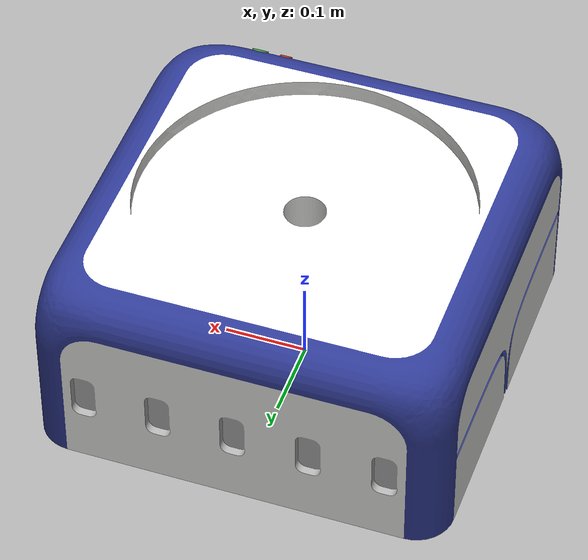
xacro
<?xml version="1.0"?>
<robot xmlns:xacro="http://www.ros.org/wiki/xacro">

    <xacro:macro name="base" params="base_link">
        <gazebo reference="${base_link}">
            <selfCollide>true</selfCollide>
            <mu1 value="0.3" />
            <mu2 value="0.3" />
            <kp value="1000000.0" />
            <kd value="100" />
            <fdir1 value="0 0 0" />
        </gazebo>

        <link name="${base_link}">
            <inertial>
                <mass value="2.4" />
                <origin rpy="0  0  3.14" xyz="0  0  0.0118" />
                <inertia ixx="0.019995" ixy="0.0" ixz="0.0"
                iyy="0.019995" iyz="0.0"
                izz="0.03675" />
            </inertial>
            <collision name="${base_link}_collision">
                <origin rpy="0  0  3.14" xyz="0  0  0.0118" />
                <geometry>
                    <mesh filename="package://robot_description/models/laser_robot/meshes/carcaca.dae" scale="1 1 1" />
                </geometry>
            </collision>
            <visual name="${base_link}_visual">
                <origin rpy="0  0  3.14" xyz="0  0  0.0118" />
                <geometry>
                    <mesh filename="package://robot_description/models/laser_robot/meshes/carcaca.dae" scale="1 1 1" />
                </geometry>
            </visual>
        </link>
    </xacro:macro>

    <xacro:base base_link="carcaca" />

</robot>
